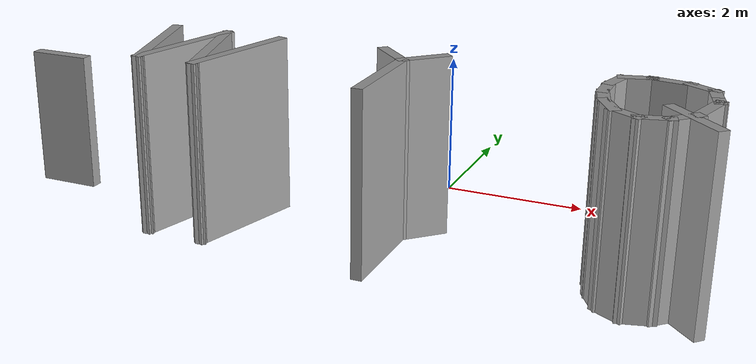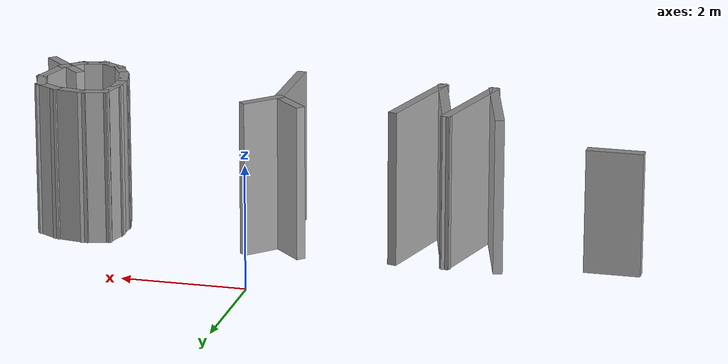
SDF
<?xml version='1.0'?>
<sdf version='1.7'>
  <model name='world_first'>
    <pose>0.25557 -1.72463 0 0 -0 0</pose>
    <link name='Door_0'>
      <collision name='Door_0_Collision'>
        <geometry>
          <box>
            <size>0.9 0.17 2</size>
          </box>
        </geometry>
        <pose>0 0 1 0 -0 0</pose>
      </collision>
      <visual name='Door_0_Visual'>
        <pose>0 0 1 0 -0 0</pose>
        <geometry>
          <box>
            <size>0.9 0.17 2</size>
          </box>
        </geometry>
        <material>
          <script>
            <uri>file://media/materials/scripts/gazebo.material</uri>
            <name>Gazebo/Grey</name>
          </script>
        </material>
      </visual>
      <pose>-5.59557 -0.389368 0 0 -0 0</pose>
    </link>
    <link name='Wall_10'>
      <collision name='Wall_10_Collision'>
        <geometry>
          <box>
            <size>0.75 0.15 2.5</size>
          </box>
        </geometry>
        <pose>0 0 1.25 0 -0 0</pose>
      </collision>
      <visual name='Wall_10_Visual'>
        <pose>0 0 1.25 0 -0 0</pose>
        <geometry>
          <box>
            <size>0.75 0.15 2.5</size>
          </box>
        </geometry>
        <material>
          <script>
            <uri>file://media/materials/scripts/gazebo.material</uri>
            <name>Gazebo/Grey</name>
          </script>
          <ambient>1 1 1 1</ambient>
        </material>
        <meta>
          <layer>0</layer>
        </meta>
      </visual>
      <pose>-0.039174 -0.0875 0 0 -0 0.785398</pose>
    </link>
    <link name='Wall_12'>
      <collision name='Wall_12_Collision'>
        <geometry>
          <box>
            <size>1.5 0.15 2.5</size>
          </box>
        </geometry>
        <pose>0 0 1.25 0 -0 0</pose>
      </collision>
      <visual name='Wall_12_Visual'>
        <pose>0 0 1.25 0 -0 0</pose>
        <geometry>
          <box>
            <size>1.5 0.15 2.5</size>
          </box>
        </geometry>
        <material>
          <script>
            <uri>file://media/materials/scripts/gazebo.material</uri>
            <name>Gazebo/Grey</name>
          </script>
          <ambient>1 1 1 1</ambient>
        </material>
        <meta>
          <layer>0</layer>
        </meta>
      </visual>
      <pose>-0.251306 -0.974632 0 0 -0 -1.5708</pose>
    </link>
    <link name='Wall_14'>
      <collision name='Wall_14_Collision'>
        <geometry>
          <box>
            <size>0.5 0.15 2.5</size>
          </box>
        </geometry>
        <pose>0 0 1.25 0 -0 0</pose>
      </collision>
      <visual name='Wall_14_Visual'>
        <pose>0 0 1.25 0 -0 0</pose>
        <geometry>
          <box>
            <size>0.5 0.15 2.5</size>
          </box>
        </geometry>
        <material>
          <script>
            <uri>file://media/materials/scripts/gazebo.material</uri>
            <name>Gazebo/Grey</name>
          </script>
          <ambient>1 1 1 1</ambient>
        </material>
        <meta>
          <layer>0</layer>
        </meta>
      </visual>
      <pose>2.65539 0.139339 0 0 -0 -2.87979</pose>
    </link>
    <link name='Wall_15'>
      <collision name='Wall_15_Collision'>
        <geometry>
          <box>
            <size>0.5 0.15 2.5</size>
          </box>
        </geometry>
        <pose>0 0 1.25 0 -0 0</pose>
      </collision>
      <visual name='Wall_15_Visual'>
        <pose>0 0 1.25 0 -0 0</pose>
        <geometry>
          <box>
            <size>0.5 0.15 2.5</size>
          </box>
        </geometry>
        <material>
          <script>
            <uri>file://media/materials/scripts/gazebo.material</uri>
            <name>Gazebo/Grey</name>
          </script>
          <ambient>1 1 1 1</ambient>
        </material>
        <meta>
          <layer>0</layer>
        </meta>
      </visual>
      <pose>2.44106 -0.074992 0 0 -0 -1.8326</pose>
    </link>
    <link name='Wall_16'>
      <collision name='Wall_16_Collision'>
        <geometry>
          <box>
            <size>0.5 0.15 2.5</size>
          </box>
        </geometry>
        <pose>0 0 1.25 0 -0 0</pose>
      </collision>
      <visual name='Wall_16_Visual'>
        <pose>0 0 1.25 0 -0 0</pose>
        <geometry>
          <box>
            <size>0.5 0.15 2.5</size>
          </box>
        </geometry>
        <material>
          <script>
            <uri>file://media/materials/scripts/gazebo.material</uri>
            <name>Gazebo/Grey</name>
          </script>
          <ambient>1 1 1 1</ambient>
        </material>
        <meta>
          <layer>0</layer>
        </meta>
      </visual>
      <pose>2.39577 -0.419029 0 0 -0 -1.5708</pose>
    </link>
    <link name='Wall_17'>
      <collision name='Wall_17_Collision'>
        <geometry>
          <box>
            <size>0.5 0.15 2.5</size>
          </box>
        </geometry>
        <pose>0 0 1.25 0 -0 0</pose>
      </collision>
      <visual name='Wall_17_Visual'>
        <pose>0 0 1.25 0 -0 0</pose>
        <geometry>
          <box>
            <size>0.5 0.15 2.5</size>
          </box>
        </geometry>
        <material>
          <script>
            <uri>file://media/materials/scripts/gazebo.material</uri>
            <name>Gazebo/Grey</name>
          </script>
          <ambient>1 1 1 1</ambient>
        </material>
        <meta>
          <layer>0</layer>
        </meta>
      </visual>
      <pose>2.44106 -0.763066 0 0 -0 -1.309</pose>
    </link>
    <link name='Wall_18'>
      <collision name='Wall_18_Collision'>
        <geometry>
          <box>
            <size>0.5 0.15 2.5</size>
          </box>
        </geometry>
        <pose>0 0 1.25 0 -0 0</pose>
      </collision>
      <visual name='Wall_18_Visual'>
        <pose>0 0 1.25 0 -0 0</pose>
        <geometry>
          <box>
            <size>0.5 0.15 2.5</size>
          </box>
        </geometry>
        <material>
          <script>
            <uri>file://media/materials/scripts/gazebo.material</uri>
            <name>Gazebo/Grey</name>
          </script>
          <ambient>1 1 1 1</ambient>
        </material>
        <meta>
          <layer>0</layer>
        </meta>
      </visual>
      <pose>2.57386 -1.08366 0 0 -0 -1.0472</pose>
    </link>
    <link name='Wall_19'>
      <collision name='Wall_19_Collision'>
        <geometry>
          <box>
            <size>0.5 0.15 2.5</size>
          </box>
        </geometry>
        <pose>0 0 1.25 0 -0 0</pose>
      </collision>
      <visual name='Wall_19_Visual'>
        <pose>0 0 1.25 0 -0 0</pose>
        <geometry>
          <box>
            <size>0.5 0.15 2.5</size>
          </box>
        </geometry>
        <material>
          <script>
            <uri>file://media/materials/scripts/gazebo.material</uri>
            <name>Gazebo/Grey</name>
          </script>
          <ambient>1 1 1 1</ambient>
        </material>
        <meta>
          <layer>0</layer>
        </meta>
      </visual>
      <pose>2.81291 -1.32271 0 0 -0 -0.523599</pose>
    </link>
    <link name='Wall_20'>
      <collision name='Wall_20_Collision'>
        <geometry>
          <box>
            <size>0.5 0.15 2.5</size>
          </box>
        </geometry>
        <pose>0 0 1.25 0 -0 0</pose>
      </collision>
      <visual name='Wall_20_Visual'>
        <pose>0 0 1.25 0 -0 0</pose>
        <geometry>
          <box>
            <size>0.5 0.15 2.5</size>
          </box>
        </geometry>
        <material>
          <script>
            <uri>file://media/materials/scripts/gazebo.material</uri>
            <name>Gazebo/Grey</name>
          </script>
          <ambient>1 1 1 1</ambient>
        </material>
        <meta>
          <layer>0</layer>
        </meta>
      </visual>
      <pose>3.1335 -1.36492 0 0 -0 0.261799</pose>
    </link>
    <link name='Wall_21'>
      <collision name='Wall_21_Collision'>
        <geometry>
          <box>
            <size>0.5 0.15 2.5</size>
          </box>
        </geometry>
        <pose>0 0 1.25 0 -0 0</pose>
      </collision>
      <visual name='Wall_21_Visual'>
        <pose>0 0 1.25 0 -0 0</pose>
        <geometry>
          <box>
            <size>0.5 0.15 2.5</size>
          </box>
        </geometry>
        <material>
          <script>
            <uri>file://media/materials/scripts/gazebo.material</uri>
            <name>Gazebo/Grey</name>
          </script>
          <ambient>1 1 1 1</ambient>
        </material>
        <meta>
          <layer>0</layer>
        </meta>
      </visual>
      <pose>3.42628 -1.19588 0 0 -0 0.785398</pose>
    </link>
    <link name='Wall_22'>
      <collision name='Wall_22_Collision'>
        <geometry>
          <box>
            <size>0.75 0.15 2.5</size>
          </box>
        </geometry>
        <pose>0 0 1.25 0 -0 0</pose>
      </collision>
      <visual name='Wall_22_Visual'>
        <pose>0 0 1.25 0 -0 0</pose>
        <geometry>
          <box>
            <size>0.75 0.15 2.5</size>
          </box>
        </geometry>
        <material>
          <script>
            <uri>file://media/materials/scripts/gazebo.material</uri>
            <name>Gazebo/Grey</name>
          </script>
          <ambient>1 1 1 1</ambient>
        </material>
        <meta>
          <layer>0</layer>
        </meta>
      </visual>
      <pose>3.62767 -0.78236 0 0 -0 1.309</pose>
    </link>
    <link name='Wall_23'>
      <collision name='Wall_23_Collision'>
        <geometry>
          <box>
            <size>0.25 0.15 2.5</size>
          </box>
        </geometry>
        <pose>0 0 1.25 0 -0 0</pose>
      </collision>
      <visual name='Wall_23_Visual'>
        <pose>0 0 1.25 0 -0 0</pose>
        <geometry>
          <box>
            <size>0.25 0.15 2.5</size>
          </box>
        </geometry>
        <material>
          <script>
            <uri>file://media/materials/scripts/gazebo.material</uri>
            <name>Gazebo/Grey</name>
          </script>
          <ambient>1 1 1 1</ambient>
        </material>
        <meta>
          <layer>0</layer>
        </meta>
      </visual>
      <pose>3.69238 -0.444286 0 0 -0 1.8326</pose>
    </link>
    <link name='Wall_24'>
      <collision name='Wall_24_Collision'>
        <geometry>
          <box>
            <size>0.5 0.15 2.5</size>
          </box>
        </geometry>
        <pose>0 0 1.25 0 -0 0</pose>
      </collision>
      <visual name='Wall_24_Visual'>
        <pose>0 0 1.25 0 -0 0</pose>
        <geometry>
          <box>
            <size>0.5 0.15 2.5</size>
          </box>
        </geometry>
        <material>
          <script>
            <uri>file://media/materials/scripts/gazebo.material</uri>
            <name>Gazebo/Grey</name>
          </script>
          <ambient>1 1 1 1</ambient>
        </material>
        <meta>
          <layer>0</layer>
        </meta>
      </visual>
      <pose>3.63414 -0.226952 0 0 -0 1.8326</pose>
    </link>
    <link name='Wall_25'>
      <collision name='Wall_25_Collision'>
        <geometry>
          <box>
            <size>0.5 0.15 2.5</size>
          </box>
        </geometry>
        <pose>0 0 1.25 0 -0 0</pose>
      </collision>
      <visual name='Wall_25_Visual'>
        <pose>0 0 1.25 0 -0 0</pose>
        <geometry>
          <box>
            <size>0.5 0.15 2.5</size>
          </box>
        </geometry>
        <material>
          <script>
            <uri>file://media/materials/scripts/gazebo.material</uri>
            <name>Gazebo/Grey</name>
          </script>
          <ambient>1 1 1 1</ambient>
        </material>
        <meta>
          <layer>0</layer>
        </meta>
      </visual>
      <pose>3.43729 0.029585 0 0 -0 2.61799</pose>
    </link>
    <link name='Wall_26'>
      <collision name='Wall_26_Collision'>
        <geometry>
          <box>
            <size>0.616229 0.15 2.5</size>
          </box>
        </geometry>
        <pose>0 0 1.25 0 -0 0</pose>
      </collision>
      <visual name='Wall_26_Visual'>
        <pose>0 0 1.25 0 -0 0</pose>
        <geometry>
          <box>
            <size>0.616229 0.15 2.5</size>
          </box>
        </geometry>
        <material>
          <script>
            <uri>file://media/materials/scripts/gazebo.material</uri>
            <name>Gazebo/Grey</name>
          </script>
          <ambient>1 1 1 1</ambient>
        </material>
        <meta>
          <layer>0</layer>
        </meta>
      </visual>
      <pose>3.05509 0.150858 0 0 -0 2.9962</pose>
    </link>
    <link name='Wall_28'>
      <collision name='Wall_28_Collision'>
        <geometry>
          <box>
            <size>1 0.15 2.5</size>
          </box>
        </geometry>
        <pose>0 0 1.25 0 -0 0</pose>
      </collision>
      <visual name='Wall_28_Visual'>
        <pose>0 0 1.25 0 -0 0</pose>
        <geometry>
          <box>
            <size>1 0.15 2.5</size>
          </box>
        </geometry>
        <material>
          <script>
            <uri>file://media/materials/scripts/gazebo.material</uri>
            <name>Gazebo/Grey</name>
          </script>
          <ambient>1 1 1 1</ambient>
        </material>
        <meta>
          <layer>0</layer>
        </meta>
      </visual>
      <pose>3.53495 -1.16589 0 0 -0 -0.785398</pose>
    </link>
    <link name='Wall_3'>
      <collision name='Wall_3_Collision'>
        <geometry>
          <box>
            <size>1.75 0.15 2.5</size>
          </box>
        </geometry>
        <pose>0 0 1.25 0 -0 0</pose>
      </collision>
      <visual name='Wall_3_Visual'>
        <pose>0 0 1.25 0 -0 0</pose>
        <geometry>
          <box>
            <size>1.75 0.15 2.5</size>
          </box>
        </geometry>
        <material>
          <script>
            <uri>file://media/materials/scripts/gazebo.material</uri>
            <name>Gazebo/Grey</name>
          </script>
          <ambient>1 1 1 1</ambient>
        </material>
        <meta>
          <layer>0</layer>
        </meta>
      </visual>
      <pose>-3.64262 -0.752627 0 0 -0 1.8326</pose>
    </link>
    <link name='Wall_5'>
      <collision name='Wall_5_Collision'>
        <geometry>
          <box>
            <size>1.75 0.15 2.5</size>
          </box>
        </geometry>
        <pose>0 0 1.25 0 -0 0</pose>
      </collision>
      <visual name='Wall_5_Visual'>
        <pose>0 0 1.25 0 -0 0</pose>
        <geometry>
          <box>
            <size>1.75 0.15 2.5</size>
          </box>
        </geometry>
        <material>
          <script>
            <uri>file://media/materials/scripts/gazebo.material</uri>
            <name>Gazebo/Grey</name>
          </script>
          <ambient>1 1 1 1</ambient>
        </material>
        <meta>
          <layer>0</layer>
        </meta>
      </visual>
      <pose>-3.22851 -0.752627 0 0 -0 1.309</pose>
    </link>
    <link name='Wall_6'>
      <collision name='Wall_6_Collision'>
        <geometry>
          <box>
            <size>1.75 0.15 2.5</size>
          </box>
        </geometry>
        <pose>0 0 1.25 0 -0 0</pose>
      </collision>
      <visual name='Wall_6_Visual'>
        <pose>0 0 1.25 0 -0 0</pose>
        <geometry>
          <box>
            <size>1.75 0.15 2.5</size>
          </box>
        </geometry>
        <material>
          <script>
            <uri>file://media/materials/scripts/gazebo.material</uri>
            <name>Gazebo/Grey</name>
          </script>
          <ambient>1 1 1 1</ambient>
        </material>
        <meta>
          <layer>0</layer>
        </meta>
      </visual>
      <pose>-2.8144 -0.752627 0 0 -0 -1.309</pose>
    </link>
    <link name='Wall_7'>
      <collision name='Wall_7_Collision'>
        <geometry>
          <box>
            <size>1.75 0.15 2.5</size>
          </box>
        </geometry>
        <pose>0 0 1.25 0 -0 0</pose>
      </collision>
      <visual name='Wall_7_Visual'>
        <pose>0 0 1.25 0 -0 0</pose>
        <geometry>
          <box>
            <size>1.75 0.15 2.5</size>
          </box>
        </geometry>
        <material>
          <script>
            <uri>file://media/materials/scripts/gazebo.material</uri>
            <name>Gazebo/Grey</name>
          </script>
          <ambient>1 1 1 1</ambient>
        </material>
        <meta>
          <layer>0</layer>
        </meta>
      </visual>
      <pose>-2.40029 -0.752627 0 0 -0 1.309</pose>
    </link>
    <link name='Wall_9'>
      <collision name='Wall_9_Collision'>
        <geometry>
          <box>
            <size>0.75 0.15 2.5</size>
          </box>
        </geometry>
        <pose>0 0 1.25 0 -0 0</pose>
      </collision>
      <visual name='Wall_9_Visual'>
        <pose>0 0 1.25 0 -0 0</pose>
        <geometry>
          <box>
            <size>0.75 0.15 2.5</size>
          </box>
        </geometry>
        <material>
          <script>
            <uri>file://media/materials/scripts/gazebo.material</uri>
            <name>Gazebo/Grey</name>
          </script>
          <ambient>1 1 1 1</ambient>
        </material>
        <meta>
          <layer>0</layer>
        </meta>
      </visual>
      <pose>-0.463438 -0.0875 0 0 -0 -0.785398</pose>
    </link>
    <static>1</static>
  </model>
</sdf>
